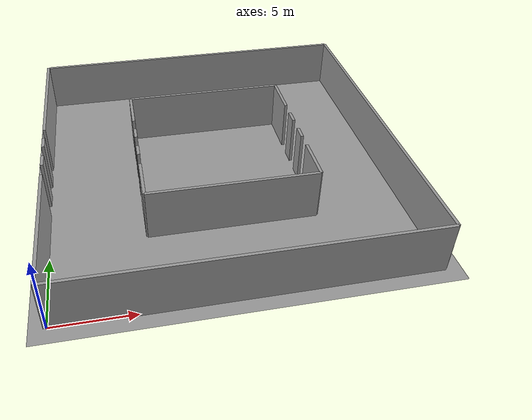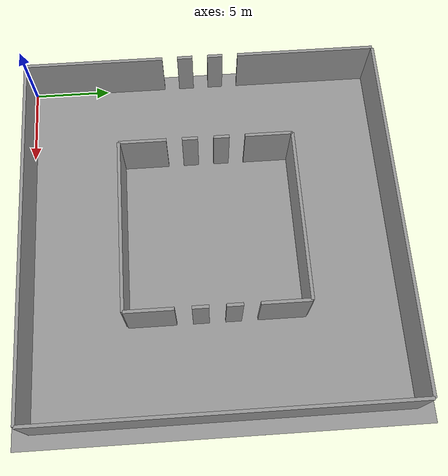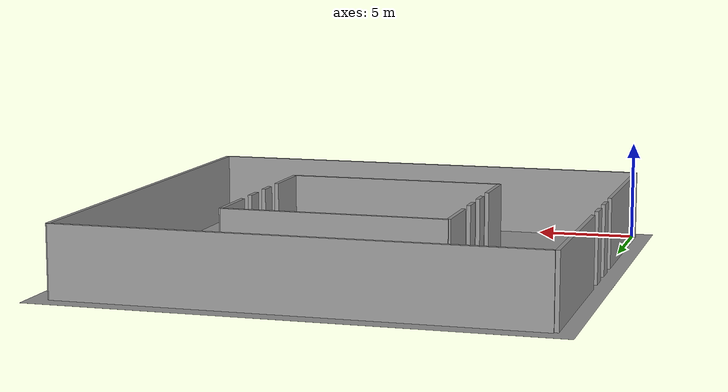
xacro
<?xml version="1.0"?>
<robot name="$(arg robot_name)" xmlns:xacro="http://www.ros.org/wiki/xacro">

  <!-- Peavy - This file was generated mostly by hand as a copy from the
       nuclear_facility.xacro file in order to simulate a couple of long
       hallways with many doors-->

  <!-- Parameters -->
  <xacro:property name="wall_height" value="3.5" />
  <xacro:property name="wall_thickness" value="0.20" />
  <xacro:property name="door_width" value="1.00" />
  <xacro:property name="door_space" value="1.00" />
  <xacro:property name="hall_width" value="3.00" />
  <xacro:property name="core_width" value="11.00" />
  <xacro:property name="building_width" value="23.00" />
  <xacro:property name="floor_width" value="25.00" />
  <xacro:property name="floor_thickness" value="0.001" />

  <!-- The main footprint link for this robotic building -->
  <link name="building_footprint_link" />

  <!--   building_base -->
  <joint name="building_base_joint" type="fixed">
    <parent link="building_footprint_link" />
    <origin xyz="0 0 0" rpy="0 0 0" />
    <child link="building_base_link" />
  </joint>
  <link name="building_base_link">
    <inertial>
      <mass value="10000" />
      <com xyz="0 0 0" />
      <inertia ixx="10000" ixy="0"     ixz="0"
                           iyy="10000" iyz="0"
                                       izz="10000" />
    </inertial>
    <visual>
      <origin xyz="0 0 0" rpy="0 0 0" />
      <geometry name="building_base_visual_geom">
        <box size="0.001 0.001 0.001" />
      </geometry>
    </visual>
    <collision>
      <origin xyz="0 0 0" rpy="0 0 0" />
      <geometry name="building_base_collision_geom">
        <box size="0.001 0.001 0.001" />
      </geometry>
    </collision>
  </link>
  <gazebo reference="building_base_link">
    <material>PR2/Grey</material>
    <mu1>50.0</mu1>
    <mu2>50.0</mu2>
    <kp>1000000000.0</kp>
    <kd>1.0</kd>
  </gazebo>

  <!--   floor_001 -->
  <joint name="floor_001_joint" type="fixed">
    <parent link="building_base_link" />
    <origin xyz="0  0  0" rpy="0 0 0" />
    <child link="floor_001_link" />
  </joint>
  <link name="floor_001_link">
    <inertial>
      <mass value="10000" />
      <com xyz="0 0 0" />
      <inertia ixx="10" ixy="0"  ixz="0"
                        iyy="10" iyz="0"
                                 izz="10" />
    </inertial>
    <visual>
      <origin xyz="${-1.0 + floor_width / 2}  ${-1.0 + floor_width / 2}  0.0" rpy="0 0 0" />
      <geometry name="floor_001_visual_geom">
        <box size="${floor_width} ${floor_width} ${floor_thickness}" />
      </geometry>
    </visual>
    <collision>
      <origin xyz="${-1.0 + floor_width / 2}  ${-1.0 + floor_width / 2}  ${-2 * floor_thickness}" rpy="0 0 0" />
      <geometry name="floor_001_collision_geom">
        <box size="${floor_width} ${floor_width} ${floor_thickness}" />
      </geometry>
    </collision>
  </link>
  <gazebo reference="floor_001_link">
    <material>PR2/Grey</material>
    <mu1>50.0</mu1>
    <mu2>50.0</mu2>
    <kp>1000000000.0</kp>
    <kd>1.0</kd>
  </gazebo>

  <!--   hallway_001 -->

  <joint name="hallway_001__wall_001_joint" type="fixed" >
    <parent link="floor_001_link" />
    <origin xyz="0  ${(2 * hall_width + 3 * door_space) / 2}  0" rpy="0  0  1.5708" />
    <child link="hallway_001__wall_001" />
  </joint>
  <link name="hallway_001__wall_001">
    <inertial>
      <mass value="0"/>
      <origin rpy="0  0  0" xyz="0  0  0"/>
      <inertia ixx="0" ixy="0" ixz="0" iyy="0" iyz="0" izz="0"/>
    </inertial>
    <collision name="hallway_001__wall_001_Collision">
      <origin rpy="0  0  0" xyz="0  ${wall_thickness/2}  ${wall_height / 2}"/>
      <geometry>
        <box size="${2 * hall_width + 3 * door_space} ${wall_thickness} ${wall_height}"/>
      </geometry>
    </collision>
    <visual name="hallway_001__wall_001_Visual">
      <origin rpy="0  0  0" xyz="0  ${wall_thickness/2}  ${wall_height / 2}"/>
      <geometry>
        <box size="${2 * hall_width + 3 * door_space} ${wall_thickness} ${wall_height}"/>
      </geometry>
    </visual>
  </link>
  <gazebo reference="hallway_001__wall_001">
    <material>PR2/Grey2</material>
    <laserRetro>1000</laserRetro>
    <selfCollide>false</selfCollide>
  </gazebo>

  <joint name="hallway_001__wall_002_joint" type="fixed" >
    <parent link="floor_001_link" />
    <origin xyz="0  ${2 * hall_width + 3.5 * door_space +  door_width}  0" rpy="0  0  1.5708" />
    <child link="hallway_001__wall_002" />
  </joint>
  <link name="hallway_001__wall_002">
    <inertial>
      <mass value="0"/>
      <origin rpy="0  0  0" xyz="0  0  0"/>
      <inertia ixx="0" ixy="0" ixz="0" iyy="0" iyz="0" izz="0"/>
    </inertial>
    <collision name="hallway_001__wall_002_Collision">
      <origin rpy="0  0  0" xyz="0  ${wall_thickness/2}  ${wall_height / 2}"/>
      <geometry>
        <box size="${door_space} ${wall_thickness} ${wall_height}"/>
      </geometry>
    </collision>
    <visual name="hallway_001__wall_002_Visual">
      <origin rpy="0  0  0" xyz="0  ${wall_thickness/2}  ${wall_height / 2}"/>
      <geometry>
        <box size="${door_space} ${wall_thickness} ${wall_height}"/>
      </geometry>
    </visual>
  </link>
  <gazebo reference="hallway_001__wall_002">
    <material>PR2/Grey2</material>
    <laserRetro>1000</laserRetro>
    <selfCollide>false</selfCollide>
  </gazebo>

  <joint name="hallway_001__wall_003_joint" type="fixed" >
    <parent link="floor_001_link" />
    <origin xyz="0  ${2 * hall_width + 4.5 * door_space +  2 * door_width}  0" rpy="0  0  1.5708" />
    <child link="hallway_001__wall_003" />
  </joint>
  <link name="hallway_001__wall_003">
    <inertial>
      <mass value="0"/>
      <origin rpy="0  0  0" xyz="0  0  0"/>
      <inertia ixx="0" ixy="0" ixz="0" iyy="0" iyz="0" izz="0"/>
    </inertial>
    <collision name="hallway_001__wall_003_Collision">
      <origin rpy="0  0  0" xyz="0  ${wall_thickness/2}  ${wall_height / 2}"/>
      <geometry>
        <box size="${door_space} ${wall_thickness} ${wall_height}"/>
      </geometry>
    </collision>
    <visual name="hallway_001__wall_003_Visual">
      <origin rpy="0  0  0" xyz="0  ${wall_thickness/2}  ${wall_height / 2}"/>
      <geometry>
        <box size="${door_space} ${wall_thickness} ${wall_height}"/>
      </geometry>
    </visual>
  </link>
  <gazebo reference="hallway_001__wall_003">
    <material>PR2/Grey2</material>
    <laserRetro>1000</laserRetro>
    <selfCollide>false</selfCollide>
  </gazebo>

  <joint name="hallway_001__wall_004_joint" type="fixed" >
    <parent link="floor_001_link" />
    <origin xyz="0  ${2 * hall_width + 5 * door_space +  3 * door_width + (2 * hall_width + 3 * door_space) / 2}  0" rpy="0  0  1.5708" />
    <child link="hallway_001__wall_004" />
  </joint>
  <link name="hallway_001__wall_004">
    <inertial>
      <mass value="0"/>
      <origin rpy="0  0  0" xyz="0  0  0"/>
      <inertia ixx="0" ixy="0" ixz="0" iyy="0" iyz="0" izz="0"/>
    </inertial>
    <collision name="hallway_001__wall_004_Collision">
      <origin rpy="0  0  0" xyz="0  ${wall_thickness/2}  ${wall_height / 2}"/>
      <geometry>
        <box size="${2 * hall_width + 3 * door_space} ${wall_thickness} ${wall_height}"/>
      </geometry>
    </collision>
    <visual name="hallway_001__wall_004_Visual">
      <origin rpy="0  0  0" xyz="0  ${wall_thickness/2}  ${wall_height / 2}"/>
      <geometry>
        <box size="${2 * hall_width + 3 * door_space} ${wall_thickness} ${wall_height}"/>
      </geometry>
    </visual>
  </link>
  <gazebo reference="hallway_001__wall_004">
    <material>PR2/Grey2</material>
    <laserRetro>1000</laserRetro>
    <selfCollide>false</selfCollide>
  </gazebo>

  <!--   hallway_002 -->

  <joint name="hallway_002__wall_001_joint" type="fixed" >
    <parent link="floor_001_link" />
    <origin xyz="${building_width / 2}  0  0" rpy="0  0  0" />
    <child link="hallway_002__wall_001" />
  </joint>
  <link name="hallway_002__wall_001">
    <inertial>
      <mass value="0"/>
      <origin rpy="0  0  0" xyz="0  0  0"/>
      <inertia ixx="0" ixy="0" ixz="0" iyy="0" iyz="0" izz="0"/>
    </inertial>
    <collision name="hallway_002__wall_001_Collision">
      <origin rpy="0  0  0" xyz="0   0  ${wall_height / 2}"/>
      <geometry>
        <box size="${building_width}  ${wall_thickness}  ${wall_height}"/>
      </geometry>
    </collision>
    <visual name="hallway_002__wall_001_Visual">
      <origin rpy="0  0  0" xyz="0  0  ${wall_height / 2}"/>
      <geometry>
        <box size="${building_width}  ${wall_thickness} ${wall_height}"/>
      </geometry>
    </visual>
  </link>
  <gazebo reference="hallway_002__wall_001">
    <material>PR2/Grey2</material>
    <laserRetro>1000</laserRetro>
    <selfCollide>false</selfCollide>
  </gazebo>

  <!--   hallway_003 -->

  <joint name="hallway_003__wall_001_joint" type="fixed" >
    <parent link="floor_001_link" />
    <origin xyz="${building_width}  ${building_width / 2}  0" rpy="0  0  1.5708" />
    <child link="hallway_003__wall_001" />
  </joint>
  <link name="hallway_003__wall_001">
    <inertial>
      <mass value="0"/>
      <origin rpy="0  0  0" xyz="0  0  0"/>
      <inertia ixx="0" ixy="0" ixz="0" iyy="0" iyz="0" izz="0"/>
    </inertial>
    <collision name="hallway_003__wall_001_Collision">
      <origin rpy="0  0  0" xyz="0   0  ${wall_height / 2}"/>
      <geometry>
        <box size="${building_width}  ${wall_thickness}  ${wall_height}"/>
      </geometry>
    </collision>
    <visual name="hallway_003__wall_001_Visual">
      <origin rpy="0  0  0" xyz="0  0  ${wall_height / 2}"/>
      <geometry>
        <box size="${building_width}  ${wall_thickness} ${wall_height}"/>
      </geometry>
    </visual>
  </link>
  <gazebo reference="hallway_003__wall_001">
    <material>PR2/Grey2</material>
    <laserRetro>1000</laserRetro>
    <selfCollide>false</selfCollide>
  </gazebo>

  <!--   hallway_004 -->

  <joint name="hallway_004__wall_001_joint" type="fixed" >
    <parent link="floor_001_link" />
    <origin xyz="${building_width / 2}  ${building_width}  0" rpy="0  0  0" />
    <child link="hallway_004__wall_001" />
  </joint>
  <link name="hallway_004__wall_001">
    <inertial>
      <mass value="0"/>
      <origin rpy="0  0  0" xyz="0  0  0"/>
      <inertia ixx="0" ixy="0" ixz="0" iyy="0" iyz="0" izz="0"/>
    </inertial>
    <collision name="hallway_004__wall_001_Collision">
      <origin rpy="0  0  0" xyz="0   0  ${wall_height / 2}"/>
      <geometry>
        <box size="${building_width}  ${wall_thickness}  ${wall_height}"/>
      </geometry>
    </collision>
    <visual name="hallway_004__wall_001_Visual">
      <origin rpy="0  0  0" xyz="0  0  ${wall_height / 2}"/>
      <geometry>
        <box size="${building_width}  ${wall_thickness} ${wall_height}"/>
      </geometry>
    </visual>
  </link>
  <gazebo reference="hallway_004__wall_001">
    <material>PR2/Grey2</material>
    <laserRetro>1000</laserRetro>
    <selfCollide>false</selfCollide>
  </gazebo>

  <!--     core_001         -->

  <joint name="core_001__wall_001_joint" type="fixed" >
    <parent link="floor_001_link" />
    <origin xyz="${2 * hall_width}  ${2 * hall_width + 3 * door_space / 2}  0" rpy="0  0  1.5708" />
    <child link="core_001__wall_001" />
  </joint>
  <link name="core_001__wall_001">
    <inertial>
      <mass value="0"/>
      <origin rpy="0  0  0" xyz="0  0  0"/>
      <inertia ixx="0" ixy="0" ixz="0" iyy="0" iyz="0" izz="0"/>
    </inertial>
    <collision name="core_001__wall_001_Collision">
      <origin rpy="0  0  0" xyz="0   0  ${wall_height / 2}"/>
      <geometry>
        <box size="${3 * door_space}  ${wall_thickness}  ${wall_height}"/>
      </geometry>
    </collision>
    <visual name="core_001__wall_001_Visual">
      <origin rpy="0  0  0" xyz="0  0  ${wall_height / 2}"/>
      <geometry>
        <box size="${3 * door_space}  ${wall_thickness} ${wall_height}"/>
      </geometry>
    </visual>
  </link>
  <gazebo reference="core_001__wall_001">
    <material>PR2/Grey2</material>
    <laserRetro>1000</laserRetro>
    <selfCollide>false</selfCollide>
  </gazebo>

  <joint name="core_001__wall_002_joint" type="fixed" >
    <parent link="floor_001_link" />
    <origin xyz="${2 * hall_width}  ${2 * hall_width + 3.5 * door_space + door_width}  0" rpy="0  0  1.5708" />
    <child link="core_001__wall_002" />
  </joint>
  <link name="core_001__wall_002">
    <inertial>
      <mass value="0"/>
      <origin rpy="0  0  0" xyz="0  0  0"/>
      <inertia ixx="0" ixy="0" ixz="0" iyy="0" iyz="0" izz="0"/>
    </inertial>
    <collision name="core_001__wall_002_Collision">
      <origin rpy="0  0  0" xyz="0   0  ${wall_height / 2}"/>
      <geometry>
        <box size="${door_space}  ${wall_thickness}  ${wall_height}"/>
      </geometry>
    </collision>
    <visual name="core_001__wall_002_Visual">
      <origin rpy="0  0  0" xyz="0  0  ${wall_height / 2}"/>
      <geometry>
        <box size="${door_space}  ${wall_thickness} ${wall_height}"/>
      </geometry>
    </visual>
  </link>
  <gazebo reference="core_001__wall_002">
    <material>PR2/Grey2</material>
    <laserRetro>1000</laserRetro>
    <selfCollide>false</selfCollide>
  </gazebo>

  <joint name="core_001__wall_003_joint" type="fixed" >
    <parent link="floor_001_link" />
    <origin xyz="${2 * hall_width}  ${2 * hall_width + 4.5 * door_space + 2 * door_width}  0" rpy="0  0  1.5708" />
    <child link="core_001__wall_003" />
  </joint>
  <link name="core_001__wall_003">
    <inertial>
      <mass value="0"/>
      <origin rpy="0  0  0" xyz="0  0  0"/>
      <inertia ixx="0" ixy="0" ixz="0" iyy="0" iyz="0" izz="0"/>
    </inertial>
    <collision name="core_001__wall_003_Collision">
      <origin rpy="0  0  0" xyz="0   0  ${wall_height / 2}"/>
      <geometry>
        <box size="${door_space}  ${wall_thickness}  ${wall_height}"/>
      </geometry>
    </collision>
    <visual name="core_001__wall_003_Visual">
      <origin rpy="0  0  0" xyz="0  0  ${wall_height / 2}"/>
      <geometry>
        <box size="${door_space}  ${wall_thickness} ${wall_height}"/>
      </geometry>
    </visual>
  </link>
  <gazebo reference="core_001__wall_003">
    <material>PR2/Grey2</material>
    <laserRetro>1000</laserRetro>
    <selfCollide>false</selfCollide>
  </gazebo>

  <joint name="core_001__wall_004_joint" type="fixed" >
    <parent link="floor_001_link" />
    <origin xyz="${2 * hall_width}  ${2 * hall_width + 6.5 * door_space + 3 * door_width}  0" rpy="0  0  1.5708" />
    <child link="core_001__wall_004" />
  </joint>
  <link name="core_001__wall_004">
    <inertial>
      <mass value="0"/>
      <origin rpy="0  0  0" xyz="0  0  0"/>
      <inertia ixx="0" ixy="0" ixz="0" iyy="0" iyz="0" izz="0"/>
    </inertial>
    <collision name="core_001__wall_004_Collision">
      <origin rpy="0  0  0" xyz="0   0  ${wall_height / 2}"/>
      <geometry>
        <box size="${3 * door_space}  ${wall_thickness}  ${wall_height}"/>
      </geometry>
    </collision>
    <visual name="core_001__wall_004_Visual">
      <origin rpy="0  0  0" xyz="0  0  ${wall_height / 2}"/>
      <geometry>
        <box size="${3 * door_space}  ${wall_thickness} ${wall_height}"/>
      </geometry>
    </visual>
  </link>
  <gazebo reference="core_001__wall_004">
    <material>PR2/Grey2</material>
    <laserRetro>1000</laserRetro>
    <selfCollide>false</selfCollide>
  </gazebo>

  <!--     core_002         -->

  <joint name="core_002__wall_001_joint" type="fixed" >
    <parent link="floor_001_link" />
    <origin xyz="${2 * hall_width + core_width / 2} ${2 * hall_width}   0" rpy="0  0  0" />
    <child link="core_002__wall_001" />
  </joint>
  <link name="core_002__wall_001">
    <inertial>
      <mass value="0"/>
      <origin rpy="0  0  0" xyz="0  0  0"/>
      <inertia ixx="0" ixy="0" ixz="0" iyy="0" iyz="0" izz="0"/>
    </inertial>
    <collision name="core_002__wall_001_Collision">
      <origin rpy="0  0  0" xyz="0   0  ${wall_height / 2}"/>
      <geometry>
        <box size="${core_width}  ${wall_thickness}  ${wall_height}"/>
      </geometry>
    </collision>
    <visual name="core_002__wall_001_Visual">
      <origin rpy="0  0  0" xyz="0  0  ${wall_height / 2}"/>
      <geometry>
        <box size="${core_width}  ${wall_thickness} ${wall_height}"/>
      </geometry>
    </visual>
  </link>
  <gazebo reference="core_002__wall_001">
    <material>PR2/Grey2</material>
    <laserRetro>1000</laserRetro>
    <selfCollide>false</selfCollide>
  </gazebo>

  <!--     core_003         -->

  <joint name="core_003__wall_001_joint" type="fixed" >
    <parent link="floor_001_link" />
    <origin xyz="${2 * hall_width + core_width}  ${2 * hall_width + 3 * door_space / 2}  0" rpy="0  0  1.5708" />
    <child link="core_003__wall_001" />
  </joint>
  <link name="core_003__wall_001">
    <inertial>
      <mass value="0"/>
      <origin rpy="0  0  0" xyz="0  0  0"/>
      <inertia ixx="0" ixy="0" ixz="0" iyy="0" iyz="0" izz="0"/>
    </inertial>
    <collision name="core_003__wall_001_Collision">
      <origin rpy="0  0  0" xyz="0   0  ${wall_height / 2}"/>
      <geometry>
        <box size="${3 * door_space}  ${wall_thickness}  ${wall_height}"/>
      </geometry>
    </collision>
    <visual name="core_003__wall_001_Visual">
      <origin rpy="0  0  0" xyz="0  0  ${wall_height / 2}"/>
      <geometry>
        <box size="${3 * door_space}  ${wall_thickness} ${wall_height}"/>
      </geometry>
    </visual>
  </link>
  <gazebo reference="core_003__wall_001">
    <material>PR2/Grey2</material>
    <laserRetro>1000</laserRetro>
    <selfCollide>false</selfCollide>
  </gazebo>

  <joint name="core_003__wall_002_joint" type="fixed" >
    <parent link="floor_001_link" />
    <origin xyz="${2 * hall_width + core_width}  ${2 * hall_width + 3.5 * door_space + door_width}  0" rpy="0  0  1.5708" />
    <child link="core_003__wall_002" />
  </joint>
  <link name="core_003__wall_002">
    <inertial>
      <mass value="0"/>
      <origin rpy="0  0  0" xyz="0  0  0"/>
      <inertia ixx="0" ixy="0" ixz="0" iyy="0" iyz="0" izz="0"/>
    </inertial>
    <collision name="core_003__wall_002_Collision">
      <origin rpy="0  0  0" xyz="0   0  ${wall_height / 2}"/>
      <geometry>
        <box size="${door_space}  ${wall_thickness}  ${wall_height}"/>
      </geometry>
    </collision>
    <visual name="core_003__wall_002_Visual">
      <origin rpy="0  0  0" xyz="0  0  ${wall_height / 2}"/>
      <geometry>
        <box size="${door_space}  ${wall_thickness} ${wall_height}"/>
      </geometry>
    </visual>
  </link>
  <gazebo reference="core_003__wall_002">
    <material>PR2/Grey2</material>
    <laserRetro>1000</laserRetro>
    <selfCollide>false</selfCollide>
  </gazebo>

  <joint name="core_003__wall_003_joint" type="fixed" >
    <parent link="floor_001_link" />
    <origin xyz="${2 * hall_width + core_width}  ${2 * hall_width + 4.5 * door_space + 2 * door_width}  0" rpy="0  0  1.5708" />
    <child link="core_003__wall_003" />
  </joint>
  <link name="core_003__wall_003">
    <inertial>
      <mass value="0"/>
      <origin rpy="0  0  0" xyz="0  0  0"/>
      <inertia ixx="0" ixy="0" ixz="0" iyy="0" iyz="0" izz="0"/>
    </inertial>
    <collision name="core_003__wall_003_Collision">
      <origin rpy="0  0  0" xyz="0   0  ${wall_height / 2}"/>
      <geometry>
        <box size="${door_space}  ${wall_thickness}  ${wall_height}"/>
      </geometry>
    </collision>
    <visual name="core_003__wall_003_Visual">
      <origin rpy="0  0  0" xyz="0  0  ${wall_height / 2}"/>
      <geometry>
        <box size="${door_space}  ${wall_thickness} ${wall_height}"/>
      </geometry>
    </visual>
  </link>
  <gazebo reference="core_003__wall_003">
    <material>PR2/Grey2</material>
    <laserRetro>1000</laserRetro>
    <selfCollide>false</selfCollide>
  </gazebo>

  <joint name="core_003__wall_004_joint" type="fixed" >
    <parent link="floor_001_link" />
    <origin xyz="${2 * hall_width + core_width}  ${2 * hall_width + 6.5 * door_space + 3 * door_width}  0" rpy="0  0  1.5708" />
    <child link="core_003__wall_004" />
  </joint>
  <link name="core_003__wall_004">
    <inertial>
      <mass value="0"/>
      <origin rpy="0  0  0" xyz="0  0  0"/>
      <inertia ixx="0" ixy="0" ixz="0" iyy="0" iyz="0" izz="0"/>
    </inertial>
    <collision name="core_003__wall_004_Collision">
      <origin rpy="0  0  0" xyz="0   0  ${wall_height / 2}"/>
      <geometry>
        <box size="${3 * door_space}  ${wall_thickness}  ${wall_height}"/>
      </geometry>
    </collision>
    <visual name="core_003__wall_004_Visual">
      <origin rpy="0  0  0" xyz="0  0  ${wall_height / 2}"/>
      <geometry>
        <box size="${3 * door_space}  ${wall_thickness} ${wall_height}"/>
      </geometry>
    </visual>
  </link>
  <gazebo reference="core_003__wall_004">
    <material>PR2/Grey2</material>
    <laserRetro>1000</laserRetro>
    <selfCollide>false</selfCollide>
  </gazebo>

  <!--     core_004         -->

  <joint name="core_004__wall_001_joint" type="fixed" >
    <parent link="floor_001_link" />
    <origin xyz="${2 * hall_width + core_width / 2}  ${2 * hall_width + core_width}  0" rpy="0  0  0" />
    <child link="core_004__wall_001" />
  </joint>
  <link name="core_004__wall_001">
    <inertial>
      <mass value="0"/>
      <origin rpy="0  0  0" xyz="0  0  0"/>
      <inertia ixx="0" ixy="0" ixz="0" iyy="0" iyz="0" izz="0"/>
    </inertial>
    <collision name="core_004__wall_001_Collision">
      <origin rpy="0  0  0" xyz="0   0  ${wall_height / 2}"/>
      <geometry>
        <box size="${core_width}  ${wall_thickness}  ${wall_height}"/>
      </geometry>
    </collision>
    <visual name="core_004__wall_001_Visual">
      <origin rpy="0  0  0" xyz="0  0  ${wall_height / 2}"/>
      <geometry>
        <box size="${core_width}  ${wall_thickness} ${wall_height}"/>
      </geometry>
    </visual>
  </link>
  <gazebo reference="core_004__wall_001">
    <material>PR2/Grey2</material>
    <laserRetro>1000</laserRetro>
    <selfCollide>false</selfCollide>
  </gazebo>

</robot>
